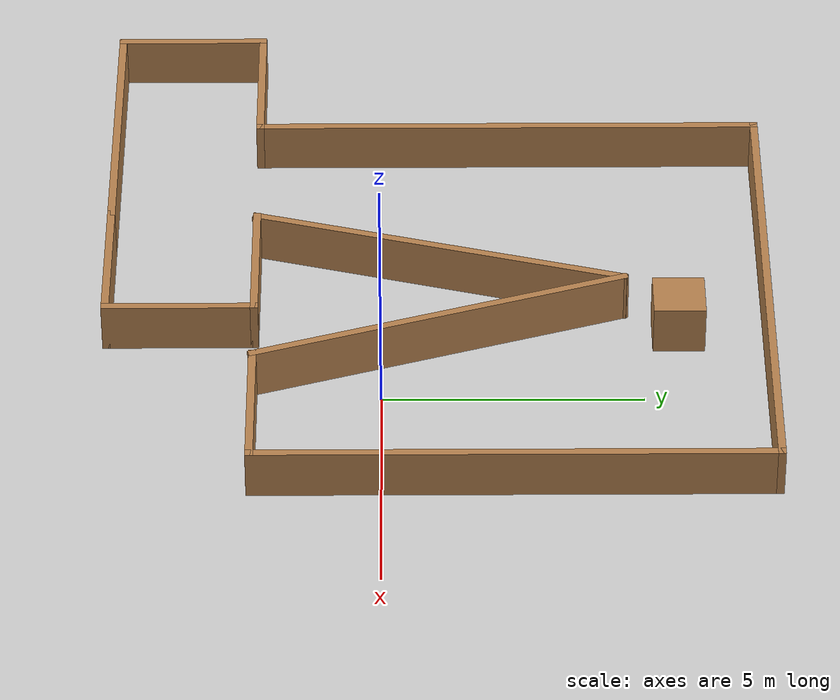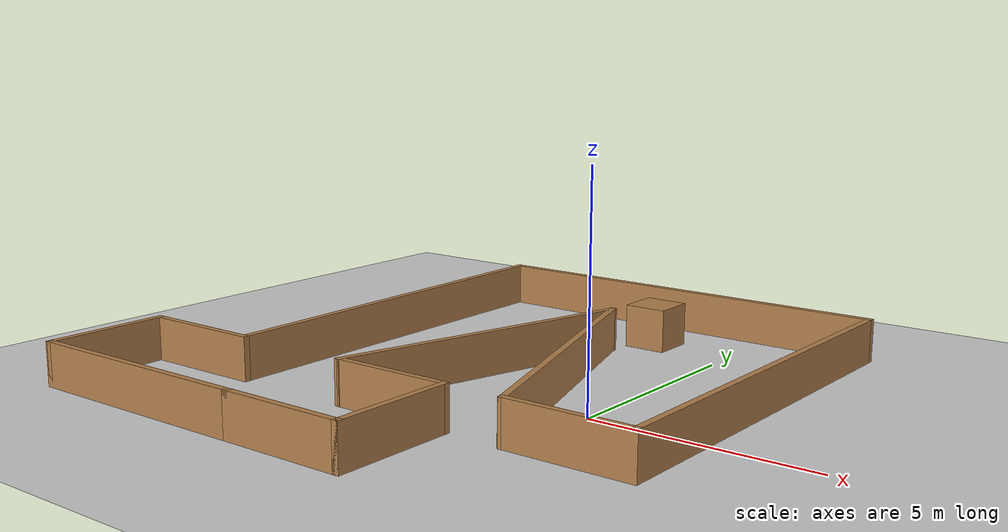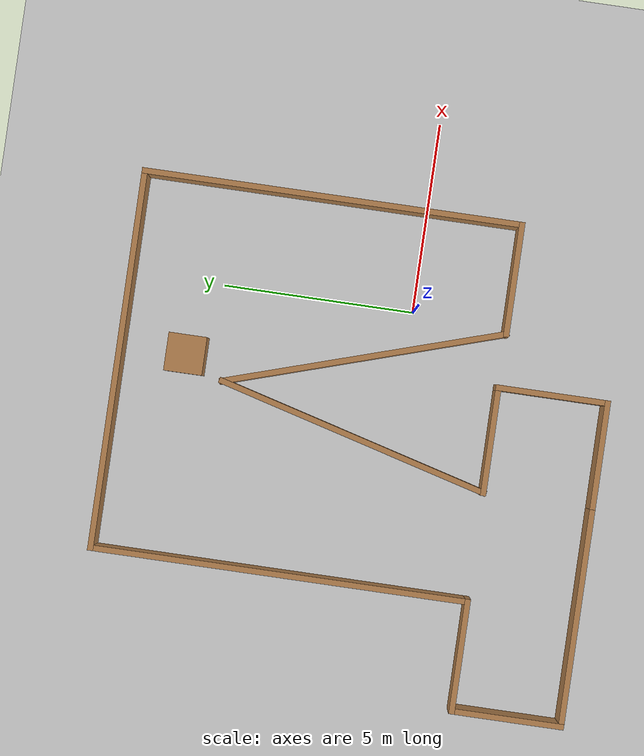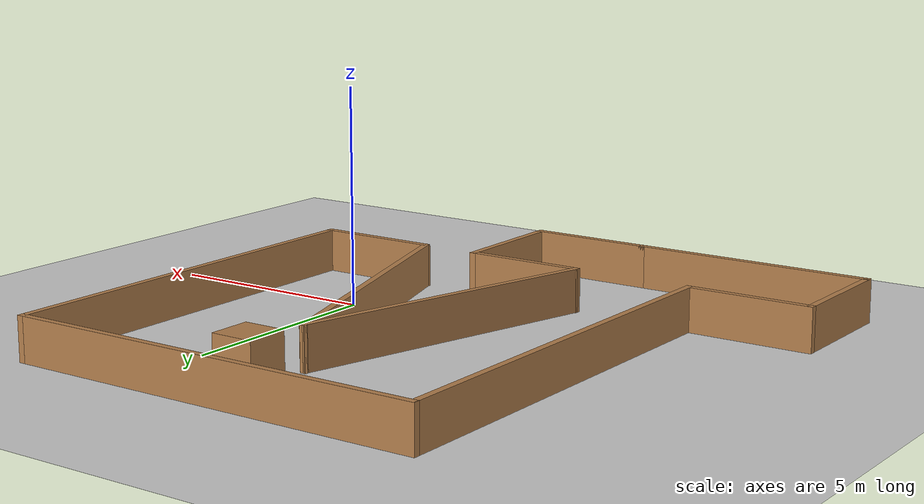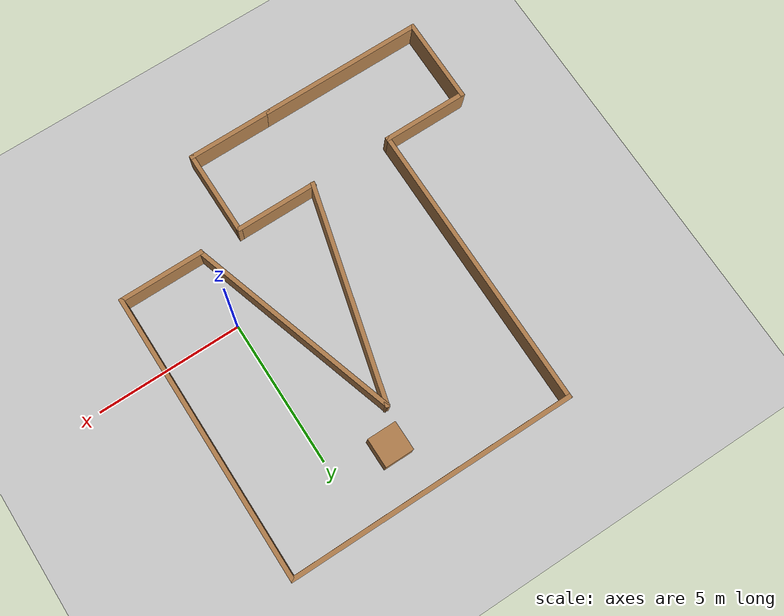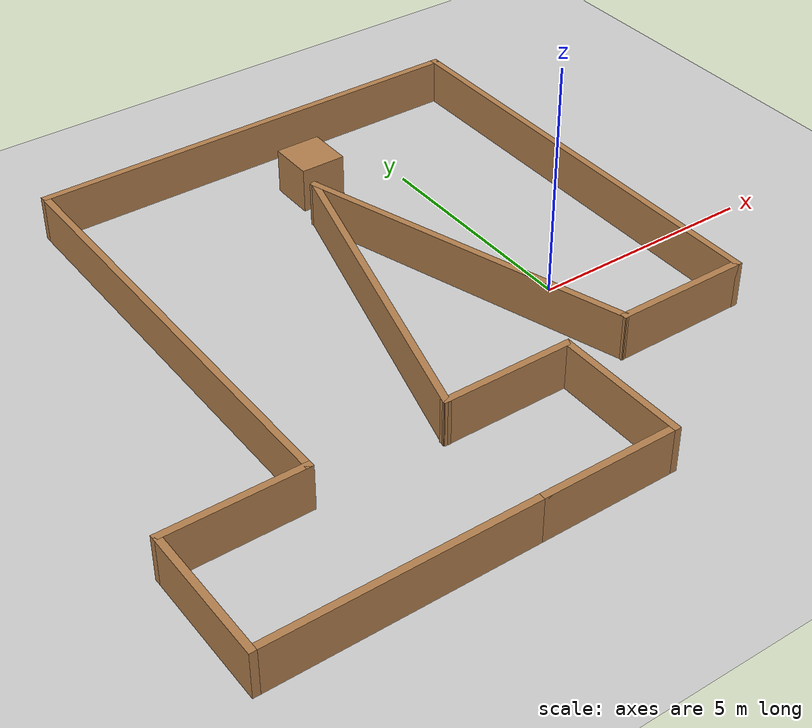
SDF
<sdf version='1.7'>
  <world name='default'>
    <light name='sun' type='directional'>
      <cast_shadows>1</cast_shadows>
      <pose>0 0 10 0 -0 0</pose>
      <diffuse>0.8 0.8 0.8 1</diffuse>
      <specular>0.2 0.2 0.2 1</specular>
      <attenuation>
        <range>1000</range>
        <constant>0.9</constant>
        <linear>0.01</linear>
        <quadratic>0.001</quadratic>
      </attenuation>
      <direction>-0.5 0.1 -0.9</direction>
      <spot>
        <inner_angle>0</inner_angle>
        <outer_angle>0</outer_angle>
        <falloff>0</falloff>
      </spot>
    </light>
    <model name='ground_plane'>
      <static>1</static>
      <link name='link'>
        <collision name='collision'>
          <geometry>
            <plane>
              <normal>0 0 1</normal>
              <size>100 100</size>
            </plane>
          </geometry>
          <surface>
            <contact>
              <collide_bitmask>65535</collide_bitmask>
              <ode/>
            </contact>
            <friction>
              <ode>
                <mu>100</mu>
                <mu2>50</mu2>
              </ode>
              <torsional>
                <ode/>
              </torsional>
            </friction>
            <bounce/>
          </surface>
          <max_contacts>10</max_contacts>
        </collision>
        <visual name='visual'>
          <cast_shadows>0</cast_shadows>
          <geometry>
            <plane>
              <normal>0 0 1</normal>
              <size>100 100</size>
            </plane>
          </geometry>
          <material>
            <script>
              <uri>file://media/materials/scripts/gazebo.material</uri>
              <name>Gazebo/Grey</name>
            </script>
          </material>
        </visual>
        <self_collide>0</self_collide>
        <enable_wind>0</enable_wind>
        <kinematic>0</kinematic>
      </link>
    </model>
    <gravity>0 0 -9.8</gravity>
    <magnetic_field>6e-06 2.3e-05 -4.2e-05</magnetic_field>
    <atmosphere type='adiabatic'/>
    <physics type='ode'>
      <max_step_size>0.001</max_step_size>
      <real_time_factor>1</real_time_factor>
      <real_time_update_rate>1000</real_time_update_rate>
    </physics>
    <scene>
      <ambient>0.4 0.4 0.4 1</ambient>
      <background>0.7 0.7 0.7 1</background>
      <shadows>1</shadows>
    </scene>
    <wind/>
    <spherical_coordinates>
      <surface_model>EARTH_WGS84</surface_model>
      <latitude_deg>0</latitude_deg>
      <longitude_deg>0</longitude_deg>
      <elevation>0</elevation>
      <heading_deg>0</heading_deg>
    </spherical_coordinates>
    <model name='aro_easy_2'>
      <pose>-3.731 1.06 0 0 -0 0</pose>
      <link name='Wall_1'>
        <collision name='Wall_1_Collision'>
          <geometry>
            <box>
              <size>3 0.15 1</size>
            </box>
          </geometry>
          <pose>0 0 0.5 0 -0 0</pose>
          <max_contacts>10</max_contacts>
          <surface>
            <contact>
              <ode/>
            </contact>
            <bounce/>
            <friction>
              <torsional>
                <ode/>
              </torsional>
              <ode/>
            </friction>
          </surface>
        </collision>
        <visual name='Wall_1_Visual'>
          <pose>0 0 0.5 0 -0 0</pose>
          <geometry>
            <box>
              <size>3 0.15 1</size>
            </box>
          </geometry>
          <material>
            <script>
              <uri>file://media/materials/scripts/gazebo.material</uri>
              <name>Gazebo/Wood</name>
            </script>
            <ambient>1 1 1 1</ambient>
          </material>
          <meta>
            <layer>0</layer>
          </meta>
        </visual>
        <pose>4.925 -3.5 0 0 -0 0</pose>
        <self_collide>0</self_collide>
        <enable_wind>0</enable_wind>
        <kinematic>0</kinematic>
      </link>
      <link name='Wall_11'>
        <collision name='Wall_11_Collision'>
          <geometry>
            <box>
              <size>3 0.15 1</size>
            </box>
          </geometry>
          <pose>0 0 0.5 0 -0 0</pose>
          <max_contacts>10</max_contacts>
          <surface>
            <contact>
              <ode/>
            </contact>
            <bounce/>
            <friction>
              <torsional>
                <ode/>
              </torsional>
              <ode/>
            </friction>
          </surface>
        </collision>
        <visual name='Wall_11_Visual'>
          <pose>0 0 0.5 0 -0 0</pose>
          <geometry>
            <box>
              <size>3 0.15 1</size>
            </box>
          </geometry>
          <material>
            <script>
              <uri>file://media/materials/scripts/gazebo.material</uri>
              <name>Gazebo/Wood</name>
            </script>
            <ambient>1 1 1 1</ambient>
          </material>
          <meta>
            <layer>0</layer>
          </meta>
        </visual>
        <pose>-4.925 -3.5 0 0 -0 3.14159</pose>
        <self_collide>0</self_collide>
        <enable_wind>0</enable_wind>
        <kinematic>0</kinematic>
      </link>
      <link name='Wall_12'>
        <collision name='Wall_12_Collision'>
          <geometry>
            <box>
              <size>3 0.15 1</size>
            </box>
          </geometry>
          <pose>0 0 0.5 0 -0 0</pose>
          <max_contacts>10</max_contacts>
          <surface>
            <contact>
              <ode/>
            </contact>
            <bounce/>
            <friction>
              <torsional>
                <ode/>
              </torsional>
              <ode/>
            </friction>
          </surface>
        </collision>
        <visual name='Wall_12_Visual'>
          <pose>0 0 0.5 0 -0 0</pose>
          <geometry>
            <box>
              <size>3 0.15 1</size>
            </box>
          </geometry>
          <material>
            <script>
              <uri>file://media/materials/scripts/gazebo.material</uri>
              <name>Gazebo/Wood</name>
            </script>
            <ambient>1 1 1 1</ambient>
          </material>
          <meta>
            <layer>0</layer>
          </meta>
        </visual>
        <pose>-6.35 -4.925 0 0 -0 -1.5708</pose>
        <self_collide>0</self_collide>
        <enable_wind>0</enable_wind>
        <kinematic>0</kinematic>
      </link>
      <link name='Wall_13'>
        <collision name='Wall_13_Collision'>
          <geometry>
            <box>
              <size>5.75 0.15 1</size>
            </box>
          </geometry>
          <pose>0 0 0.5 0 -0 0</pose>
          <max_contacts>10</max_contacts>
          <surface>
            <contact>
              <ode/>
            </contact>
            <bounce/>
            <friction>
              <torsional>
                <ode/>
              </torsional>
              <ode/>
            </friction>
          </surface>
        </collision>
        <visual name='Wall_13_Visual'>
          <pose>0 0 0.5 0 -0 0</pose>
          <geometry>
            <box>
              <size>5.75 0.15 1</size>
            </box>
          </geometry>
          <material>
            <script>
              <uri>file://media/materials/scripts/gazebo.material</uri>
              <name>Gazebo/Wood</name>
            </script>
            <ambient>1 1 1 1</ambient>
          </material>
          <meta>
            <layer>0</layer>
          </meta>
        </visual>
        <pose>-3.55 -6.35 0 0 -0 0</pose>
        <self_collide>0</self_collide>
        <enable_wind>0</enable_wind>
        <kinematic>0</kinematic>
      </link>
      <link name='Wall_15'>
        <collision name='Wall_15_Collision'>
          <geometry>
            <box>
              <size>3 0.15 1</size>
            </box>
          </geometry>
          <pose>0 0 0.5 0 -0 0</pose>
          <max_contacts>10</max_contacts>
          <surface>
            <contact>
              <ode/>
            </contact>
            <bounce/>
            <friction>
              <torsional>
                <ode/>
              </torsional>
              <ode/>
            </friction>
          </surface>
        </collision>
        <visual name='Wall_15_Visual'>
          <pose>0 0 0.5 0 -0 0</pose>
          <geometry>
            <box>
              <size>3 0.15 1</size>
            </box>
          </geometry>
          <material>
            <script>
              <uri>file://media/materials/scripts/gazebo.material</uri>
              <name>Gazebo/Wood</name>
            </script>
            <ambient>1 1 1 1</ambient>
          </material>
          <meta>
            <layer>0</layer>
          </meta>
        </visual>
        <pose>0.675 -6.35 0 0 -0 0</pose>
        <self_collide>0</self_collide>
        <enable_wind>0</enable_wind>
        <kinematic>0</kinematic>
      </link>
      <link name='Wall_16'>
        <collision name='Wall_16_Collision'>
          <geometry>
            <box>
              <size>3 0.15 1</size>
            </box>
          </geometry>
          <pose>0 0 0.5 0 -0 0</pose>
          <max_contacts>10</max_contacts>
          <surface>
            <contact>
              <ode/>
            </contact>
            <bounce/>
            <friction>
              <torsional>
                <ode/>
              </torsional>
              <ode/>
            </friction>
          </surface>
        </collision>
        <visual name='Wall_16_Visual'>
          <pose>0 0 0.5 0 -0 0</pose>
          <geometry>
            <box>
              <size>3 0.15 1</size>
            </box>
          </geometry>
          <material>
            <script>
              <uri>file://media/materials/scripts/gazebo.material</uri>
              <name>Gazebo/Wood</name>
            </script>
            <ambient>1 1 1 1</ambient>
          </material>
          <meta>
            <layer>0</layer>
          </meta>
        </visual>
        <pose>2.1 -4.925 0 0 -0 1.5708</pose>
        <self_collide>0</self_collide>
        <enable_wind>0</enable_wind>
        <kinematic>0</kinematic>
      </link>
      <link name='Wall_17'>
        <collision name='Wall_17_Collision'>
          <geometry>
            <box>
              <size>2.9 0.15 1</size>
            </box>
          </geometry>
          <pose>0 0 0.5 0 -0 0</pose>
          <max_contacts>10</max_contacts>
          <surface>
            <contact>
              <ode/>
            </contact>
            <bounce/>
            <friction>
              <torsional>
                <ode/>
              </torsional>
              <ode/>
            </friction>
          </surface>
        </collision>
        <visual name='Wall_17_Visual'>
          <pose>0 0 0.5 0 -0 0</pose>
          <geometry>
            <box>
              <size>2.9 0.15 1</size>
            </box>
          </geometry>
          <material>
            <script>
              <uri>file://media/materials/scripts/gazebo.material</uri>
              <name>Gazebo/Wood</name>
            </script>
            <ambient>1 1 1 1</ambient>
          </material>
          <meta>
            <layer>0</layer>
          </meta>
        </visual>
        <pose>0.725 -3.5 0 0 -0 3.14159</pose>
        <self_collide>0</self_collide>
        <enable_wind>0</enable_wind>
        <kinematic>0</kinematic>
      </link>
      <link name='Wall_4'>
        <collision name='Wall_4_Collision'>
          <geometry>
            <box>
              <size>10 0.15 1</size>
            </box>
          </geometry>
          <pose>0 0 0.5 0 -0 0</pose>
          <max_contacts>10</max_contacts>
          <surface>
            <contact>
              <ode/>
            </contact>
            <bounce/>
            <friction>
              <torsional>
                <ode/>
              </torsional>
              <ode/>
            </friction>
          </surface>
        </collision>
        <visual name='Wall_4_Visual'>
          <pose>0 0 0.5 0 -0 0</pose>
          <geometry>
            <box>
              <size>10 0.15 1</size>
            </box>
          </geometry>
          <material>
            <script>
              <uri>file://media/materials/scripts/gazebo.material</uri>
              <name>Gazebo/Wood</name>
            </script>
            <ambient>1 1 1 1</ambient>
          </material>
          <meta>
            <layer>0</layer>
          </meta>
        </visual>
        <pose>6.35 1.425 0 0 -0 1.5708</pose>
        <self_collide>0</self_collide>
        <enable_wind>0</enable_wind>
        <kinematic>0</kinematic>
      </link>
      <link name='Wall_5'>
        <collision name='Wall_5_Collision'>
          <geometry>
            <box>
              <size>10 0.15 1</size>
            </box>
          </geometry>
          <pose>0 0 0.5 0 -0 0</pose>
          <max_contacts>10</max_contacts>
          <surface>
            <contact>
              <ode/>
            </contact>
            <bounce/>
            <friction>
              <torsional>
                <ode/>
              </torsional>
              <ode/>
            </friction>
          </surface>
        </collision>
        <visual name='Wall_5_Visual'>
          <pose>0 0 0.5 0 -0 0</pose>
          <geometry>
            <box>
              <size>10 0.15 1</size>
            </box>
          </geometry>
          <material>
            <script>
              <uri>file://media/materials/scripts/gazebo.material</uri>
              <name>Gazebo/Wood</name>
            </script>
            <ambient>1 1 1 1</ambient>
          </material>
          <meta>
            <layer>0</layer>
          </meta>
        </visual>
        <pose>1.425 6.35 0 0 -0 3.14159</pose>
        <self_collide>0</self_collide>
        <enable_wind>0</enable_wind>
        <kinematic>0</kinematic>
      </link>
      <link name='Wall_6'>
        <collision name='Wall_6_Collision'>
          <geometry>
            <box>
              <size>10 0.15 1</size>
            </box>
          </geometry>
          <pose>0 0 0.5 0 -0 0</pose>
          <max_contacts>10</max_contacts>
          <surface>
            <contact>
              <ode/>
            </contact>
            <bounce/>
            <friction>
              <torsional>
                <ode/>
              </torsional>
              <ode/>
            </friction>
          </surface>
        </collision>
        <visual name='Wall_6_Visual'>
          <pose>0 0 0.5 0 -0 0</pose>
          <geometry>
            <box>
              <size>10 0.15 1</size>
            </box>
          </geometry>
          <material>
            <script>
              <uri>file://media/materials/scripts/gazebo.material</uri>
              <name>Gazebo/Wood</name>
            </script>
            <ambient>1 1 1 1</ambient>
          </material>
          <meta>
            <layer>0</layer>
          </meta>
        </visual>
        <pose>-3.5 1.425 0 0 -0 -1.5708</pose>
        <self_collide>0</self_collide>
        <enable_wind>0</enable_wind>
        <kinematic>0</kinematic>
      </link>
      <link name='Wall_8'>
        <collision name='Wall_8_Collision'>
          <geometry>
            <box>
              <size>7.5 0.15 1</size>
            </box>
          </geometry>
          <pose>0 0 0.5 0 -0 0</pose>
          <max_contacts>10</max_contacts>
          <surface>
            <contact>
              <ode/>
            </contact>
            <bounce/>
            <friction>
              <torsional>
                <ode/>
              </torsional>
              <ode/>
            </friction>
          </surface>
        </collision>
        <visual name='Wall_8_Visual'>
          <pose>0 0 0.5 0 -0 0</pose>
          <geometry>
            <box>
              <size>7.5 0.15 1</size>
            </box>
          </geometry>
          <material>
            <script>
              <uri>file://media/materials/scripts/gazebo.material</uri>
              <name>Gazebo/Wood</name>
            </script>
            <ambient>1 1 1 1</ambient>
          </material>
          <meta>
            <layer>0</layer>
          </meta>
        </visual>
        <pose>0.301 0.0495 0 0 -0 1.30902</pose>
        <self_collide>0</self_collide>
        <enable_wind>0</enable_wind>
        <kinematic>0</kinematic>
      </link>
      <link name='Wall_9'>
        <collision name='Wall_9_Collision'>
          <geometry>
            <box>
              <size>7.59686 0.15 1</size>
            </box>
          </geometry>
          <pose>0 0 0.5 0 -0 0</pose>
          <max_contacts>10</max_contacts>
          <surface>
            <contact>
              <ode/>
            </contact>
            <bounce/>
            <friction>
              <torsional>
                <ode/>
              </torsional>
              <ode/>
            </friction>
          </surface>
        </collision>
        <visual name='Wall_9_Visual'>
          <pose>0 0 0.5 0 -0 0</pose>
          <geometry>
            <box>
              <size>7.59686 0.15 1</size>
            </box>
          </geometry>
          <material>
            <script>
              <uri>file://media/materials/scripts/gazebo.material</uri>
              <name>Gazebo/Wood</name>
            </script>
            <ambient>1 1 1 1</ambient>
          </material>
          <meta>
            <layer>0</layer>
          </meta>
        </visual>
        <pose>2.376 0.0495 0 0 -0 -1.26412</pose>
        <self_collide>0</self_collide>
        <enable_wind>0</enable_wind>
        <kinematic>0</kinematic>
      </link>
      <static>1</static>
    </model>
    <model name='unit_box'>
      <pose>-1.92 5.7 0.5 0 -0 0</pose>
      <link name='link'>
        <inertial>
          <mass>1</mass>
          <inertia>
            <ixx>0.145833</ixx>
            <ixy>0</ixy>
            <ixz>0</ixz>
            <iyy>0.145833</iyy>
            <iyz>0</iyz>
            <izz>0.125</izz>
          </inertia>
          <pose>0 0 0 0 -0 0</pose>
        </inertial>
        <collision name='collision'>
          <geometry>
            <box>
              <size>1 1 1</size>
            </box>
          </geometry>
          <max_contacts>10</max_contacts>
          <surface>
            <contact>
              <ode/>
            </contact>
            <bounce/>
            <friction>
              <torsional>
                <ode/>
              </torsional>
              <ode/>
            </friction>
          </surface>
        </collision>
        <visual name='visual'>
          <geometry>
            <box>
              <size>1 1 1</size>
            </box>
          </geometry>
          <material>
            <script>
              <name>Gazebo/Wood</name>
              <uri>file://media/materials/scripts/gazebo.material</uri>
            </script>
          </material>
        </visual>
        <self_collide>0</self_collide>
        <enable_wind>0</enable_wind>
        <kinematic>0</kinematic>
      </link>
    </model>
    <gui fullscreen='0'>
      <camera name='user_camera'>
        <pose>-2.04538 -1.01567 51.3538 -0 1.47964 1.6162</pose>
        <view_controller>orbit</view_controller>
        <projection_type>perspective</projection_type>
      </camera>
    </gui>
  </world>
</sdf>
